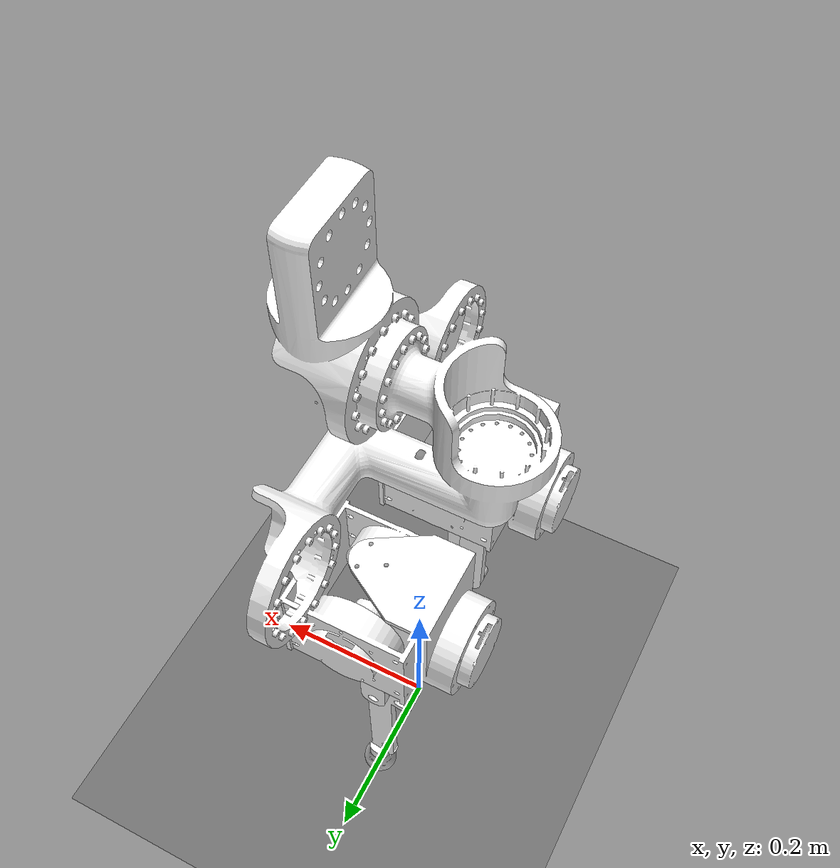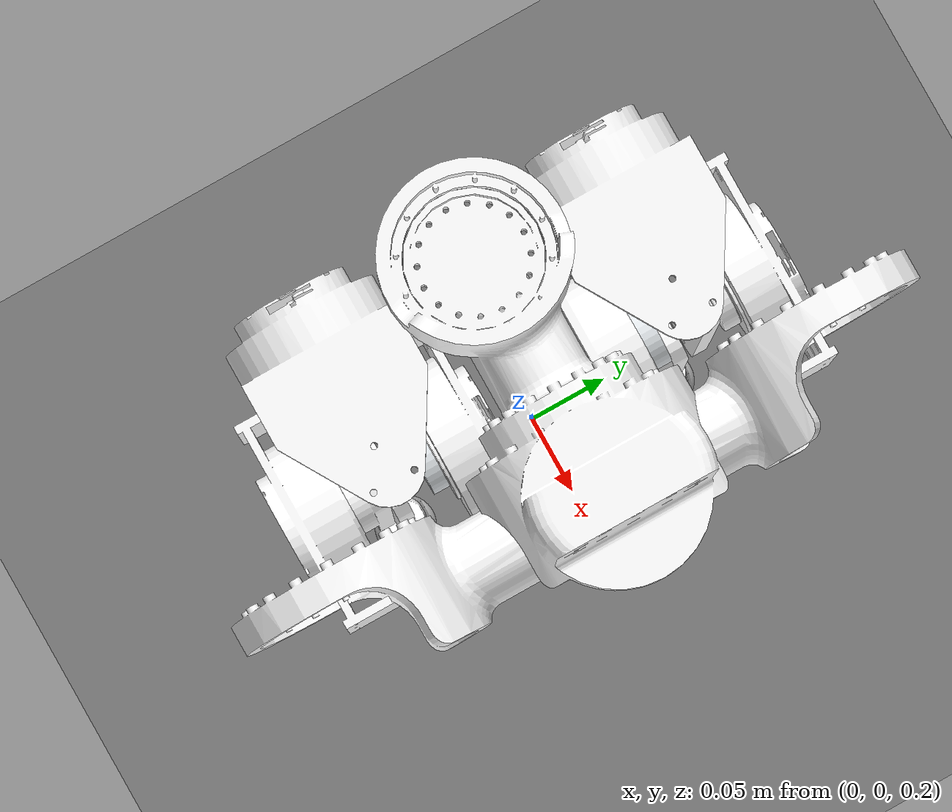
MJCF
<mujoco model="RobBIE">
  <compiler angle="radian" autolimits="true"/>

  <default>
  </default>

  <option timestep='0.001' iterations="50" solver='PGS' gravity='0 0 -9.81' noslip_iterations="20">
    <flag sensornoise="disable"/>
  </option>

  <visual>
    <quality shadowsize='4096'/>
    <global realtime="1" />
  </visual>

  <asset>
    <texture type="skybox" builtin="gradient" rgb1="0.4 0.6 0.8" width="128" height="128"/>
    <texture name="plane" type="2d" builtin="checker" rgb1="0.2 0.2 0.2" rgb2="0.3 0.3 0.3" width="500" height="500" />
    <material name="plane" reflectance="0.0" texture="plane" texrepeat="1 1" texuniform="true"/>

    <mesh name="base_link" file="base_link.STL"/>
    <mesh name="link1" file="link1.STL"/>
    <mesh name="link2" file="link2.STL"/>
    <mesh name="link3" file="link3.STL"/>
    <mesh name="link4" file="link4.STL"/>
    <mesh name="link5" file="link5.STL"/>
    <mesh name="link6" file="link6.STL"/>
    <mesh name="link7" file="link7.STL"/>
    <mesh name="link8" file="link8.STL"/>
    <mesh name="link9" file="link9.STL"/>
    <mesh name="link10" file="link10.STL"/>
    <mesh name="link11" file="link11.STL"/>
    <mesh name="link12" file="link12.STL"/>
  </asset>

  <worldbody>
    <light directional="false" cutoff="60" exponent="1" diffuse=".5 .5 .5" specular=".1 .1 .1" pos="0.5 0.1  0.8" dir="-0.5 -0.1 -0.8"/>
    <geom name="floor" pos="0  0  0" size="20 20 20" type="plane" material="plane" condim="4" conaffinity="15"  contype="15" friction="1 1 1"/>
    <body name="RobBIEv2" pos="0 0 0.52">
      <inertial pos="0.00098268 -0.00028286 -0.00423937" mass="1.9031" fullinertia="0.01281305 0.00134280 0.01296014 -0.00000134 0.00004162 -0.00000969"/>
      <geom type="mesh" rgba="1 1 1 1" mesh="base_link" contype="4" conaffinity="4"/>

      <joint type="slide" axis="1 0 0" limited="false" range="-0.01 0.01"/>
      <joint type="slide" axis="0 1 0" limited="false" range="-0.01 0.01"/>
      <joint type="slide" axis="0 0 1" limited="false" range="-0.01 0.01"/>
      <joint axis="1 0 0" limited="false" range="-0.01 0.01"/>
      <joint axis="0 1 0" limited="false" range="-0.01 0.01"/>
      <joint axis="0 0 1" limited="false" range="-0.01 0.01"/>

      <site name="imu" size="0.01" pos="0. 0 0."/>
      <body name="link1" pos="0 0.095 -0.0325" gravcomp="0">
        <inertial pos="-0.08367 4.367e-05 -0.068597" mass="0.272095" fullinertia="0.00108666 0.00115819 0.00059975 -0.00000058 0.00038015 -0.0000054"/>
        <joint name="joint1" pos="0 0 0" axis="0 0 1"/>
        <geom type="mesh" rgba="1 1 1 1" mesh="link1" contype="1" conaffinity="0"/>
        <body name="link2" pos="-0.0775 0 -0.083" gravcomp="0">
          <inertial pos="0.07491 0 0" mass="1.5432" fullinertia="0.00345285 0.00223994 0.00456425 0 0 -0.00000596"/>
          <joint name="joint2" pos="0 0 0" axis="1 0 0"/>
          <geom type="mesh" rgba="1 1 1 1" mesh="link2" contype="1" conaffinity="0"/>
          <body name="link3" pos="0.0775 0.02755 0" gravcomp="0">
            <inertial pos="0. -0.01292658 -0.07828769" mass="0.16455701" fullinertia="0.00079467 0.00080412 0.00001767 0 0 0.00002671"/>
            <joint name="joint3" pos="0 0 0" axis="0 1 0"/>
            <geom type="mesh" rgba="1 1 1 1" mesh="link3" contype="1" conaffinity="0"/>
            <body name="link4" pos="0 -0.02255 -0.2" gravcomp="0">
              <inertial pos="-0.00036421 -0.00499997 -0.11979679" mass="0.18191" fullinertia="0.00116060 0.00118037 0.00002967 0.00000008 -0.00006530 0.00000005"/>
              <joint name="joint4" pos="0 0 0" axis="0 1 0"/>
              <geom type="mesh" rgba="1 1 1 1" mesh="link4" contype="1" conaffinity="0"/>
              <site name="imu_leftFoot" size="0.01" pos="0. -0.005 -0.225"/>
            </body>
          </body>
          <body name="link5" pos="0.0775 -0.02755 0" gravcomp="0">
            <inertial pos="-0.00864862 0.00501048 -0.00499328" mass="0.0529245" fullinertia="0.00000852 0.00002091 0.00001328 -0.00000011 0.00000412 -0.00000006"/>
            <joint name="joint5" pos="0 0 0" axis="0 1 0"/>
            <geom type="mesh" rgba="0.898039 0.917647 0.929412 1" mesh="link5" contype="1" conaffinity="0"/>
            <body name="link6" pos="-0.0259808 0.01 -0.015" gravcomp="0">
              <inertial pos="0 0.005 -0.1" mass="0.128828" fullinertia="0.00050809 0.00051676 0.00001081 0 0 0"/>
              <joint name="joint6" pos="0 0 0" axis="0 1 0"/>
              <geom type="mesh" rgba="1 1 1 1" mesh="link6" contype="1" conaffinity="0"/>
            </body>
          </body>
        </body>
      </body>
      <body name="link7" pos="0 -0.095 -0.032" gravcomp="0">
        <inertial pos="-0.08367 4.367e-05 -0.068597" mass="0.272095" fullinertia="0.00108666 0.00115819 0.00059975 -0.00000058 0.00038015 -0.0000054"/>
        <joint name="joint7" pos="0 0 0" axis="0 0 1"/>
        <geom type="mesh" rgba="1 1 1 1" mesh="link7" contype="0" conaffinity="1"/>
        <body name="link8" pos="-0.0775 0 -0.083" gravcomp="0">
          <inertial pos="0.07491 0 0" mass="1.5432" fullinertia="0.00345285 0.00223994 0.00456425 0 0 -0.00000596"/>
          <joint name="joint8" pos="0 0 0" axis="1 0 0"/>
          <geom type="mesh" rgba="1 1 1 1" mesh="link8" contype="0" conaffinity="1"/>
          <body name="link9" pos="0.0775 -0.02755 0" gravcomp="0">
            <inertial pos="0. 0.01292658 -0.07828769" mass="0.16455701" fullinertia="0.00079467 0.00080412 0.00001767 0 0 -0.00002671"/>
            <joint name="joint9" pos="0 0 0" axis="0 1 0"/>
            <geom type="mesh" rgba="1 1 1 1" mesh="link9" contype="0" conaffinity="1"/>
            <body name="link10" pos="0 0.02255 -0.2" gravcomp="0">
              <inertial pos="-0.00036421 0.00499997 -0.11979679" mass="0.18191" fullinertia="0.00116060 0.00118037 0.00002967 -0.00000008 -0.00006530 -0.00000005"/>
              <joint name="joint10" pos="0 0 0" axis="0 1 0"/>
              <geom type="mesh" rgba="1 1 1 1" mesh="link10" contype="0" conaffinity="1"/>
              <site name="imu_rightFoot" size="0.01" pos="0. 0.005 -0.225"/>
            </body>
          </body>
          <body name="link11" pos="0.0775 0.02755 0" gravcomp="0">
            <inertial pos="-0.00864862 -0.00501048 -0.00499328" mass="0.0529245" fullinertia="0.00000852 0.00002091 0.00001328 0.00000011 0.00000412 0.00000006"/>
            <joint name="joint11" pos="0 0 0" axis="0 1 0"/>
            <geom type="mesh" rgba="0.898039 0.917647 0.929412 1" mesh="link11" contype="0" conaffinity="1"/>
            <body name="link12" pos="-0.0259808 -0.01 -0.015" gravcomp="0">
              <inertial pos="0 -0.005 -0.1" mass="0.128828" fullinertia="0.00050809 0.00051676 0.00001081 0 0 0"/>
              <joint name="joint12" pos="0 0 0" axis="0 1 0"/>
              <geom type="mesh" rgba="1 1 1 1" mesh="link12" contype="0" conaffinity="1"/>
            </body>
          </body>
        </body>
      </body>
    </body>
  </worldbody>

  <equality>
    <connect body1="link6" body2="link4" anchor="0 0 -0.2" solimp="0.0 0.95 0.001 0.5 2" solref="0.002 1"/>
    <connect body1="link12" body2="link10" anchor="0 0 -0.2" solimp="0.0 0.95 0.001 0.5 2" solref="0.002 1"/>
  </equality>

  <actuator>
    <motor name="left_yaw_motor"  joint="joint1" ctrllimited="false" ctrlrange="-30 30"/>
    <motor name="left_abd_motor"  joint="joint2" ctrllimited="false" ctrlrange="-30 30"/>
    <motor name="left_pitch1_motor"  joint="joint3" ctrllimited="false" ctrlrange="-30 30"/>
    <motor name="left_pitch2_motor"  joint="joint5" ctrllimited="false" ctrlrange="-30 30"/>
    <motor name="right_yaw_motor"  joint="joint7" ctrllimited="false" ctrlrange="-30 30"/>
    <motor name="right_abd_motor"  joint="joint8" ctrllimited="false" ctrlrange="-30 30"/>
    <motor name="right_pitch1_motor"  joint="joint9" ctrllimited="false" ctrlrange="-30 30"/>
    <motor name="right_pitch2_motor"  joint="joint11" ctrllimited="false" ctrlrange="-30 30"/>
  </actuator>

  <sensor>
    <framequat name="imu" objtype="site" objname="imu"/>
    <gyro site="imu"/>
    <accelerometer site="imu"/>

    <actuatorpos name="left_yaw_pos"    actuator="left_yaw_motor" noise="0.01"/>
    <actuatorpos name="left_abd_pos"   actuator="left_abd_motor" noise="0.01"/>
    <actuatorpos name="left_pitch1_pos"    actuator="left_pitch1_motor" noise="0.01"/>
    <actuatorpos name="left_pitch2_pos"    actuator="left_pitch2_motor" noise="0.01"/>

    <actuatorpos name="right_yaw_pos"    actuator="right_yaw_motor" noise="0.01"/>
    <actuatorpos name="right_abd_pos"   actuator="right_abd_motor" noise="0.01"/>
    <actuatorpos name="right_pitch1_pos"    actuator="right_pitch1_motor" noise="0.01"/>
    <actuatorpos name="right_pitch2_pos"    actuator="right_pitch2_motor" noise="0.01"/>

    <actuatorvel name="left_yaw_vel"    actuator="left_yaw_motor" noise="0.01"/>
    <actuatorvel name="left_abd_vel"   actuator="left_abd_motor" noise="0.01"/>
    <actuatorvel name="left_pitch1_vel"    actuator="left_pitch1_motor" noise="0.01"/>
    <actuatorvel name="left_pitch2_vel"    actuator="left_pitch2_motor" noise="0.01"/>
    <actuatorvel name="right_yaw_vel"    actuator="right_yaw_motor" noise="0.01"/>
    <actuatorvel name="right_abd_vel"   actuator="right_abd_motor" noise="0.01"/>
    <actuatorvel name="right_pitch1_vel"    actuator="right_pitch1_motor" noise="0.01"/>
    <actuatorvel name="right_pitch2_vel"    actuator="right_pitch2_motor" noise="0.01"/>

    <actuatorfrc name="left_yaw_frc"    actuator="left_yaw_motor" noise="0.01"/>
    <actuatorfrc name="left_abd_frc"   actuator="left_abd_motor" noise="0.01"/>
    <actuatorfrc name="left_pitch1_frc"    actuator="left_pitch1_motor" noise="0.01"/>
    <actuatorfrc name="left_pitch2_frc"    actuator="left_pitch2_motor" noise="0.01"/>
    <actuatorfrc name="right_yaw_frc"    actuator="right_yaw_motor" noise="0.01"/>
    <actuatorfrc name="right_abd_frc"   actuator="right_abd_motor" noise="0.01"/>
    <actuatorfrc name="right_pitch1_frc"    actuator="right_pitch1_motor" noise="0.01"/>
    <actuatorfrc name="right_pitch2_frc"    actuator="right_pitch2_motor" noise="0.01"/>

    <framepos objtype="site" objname="imu"/>
    <framepos objtype="site" objname="imu_leftFoot"/>
    <framepos objtype="site" objname="imu_rightFoot"/>

  </sensor>

</mujoco>
